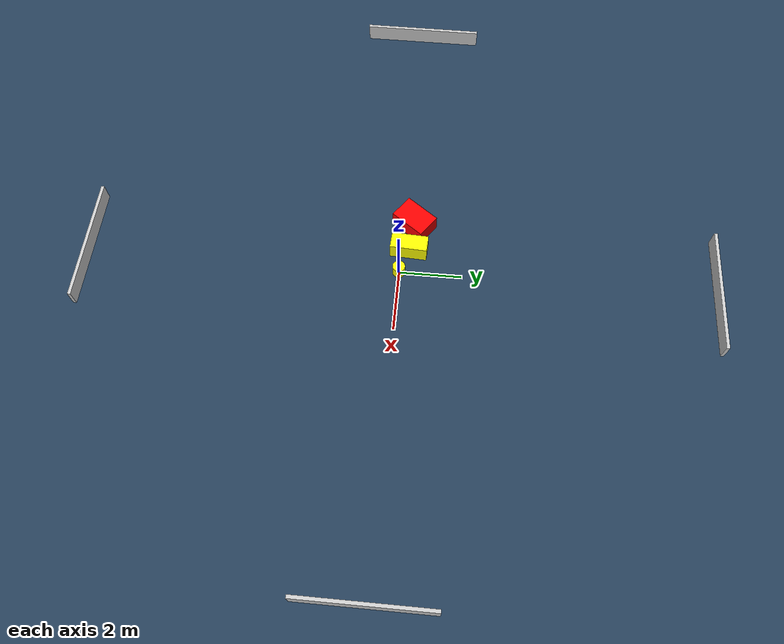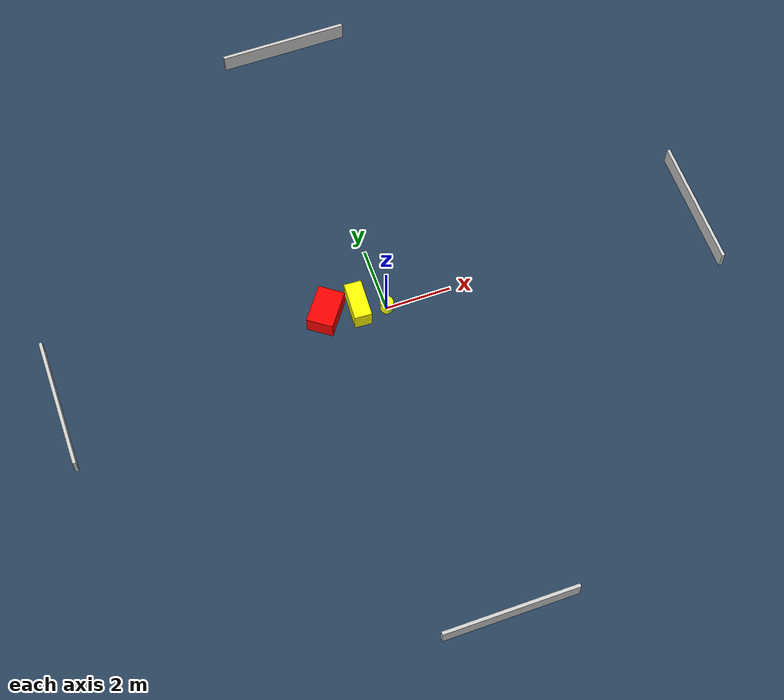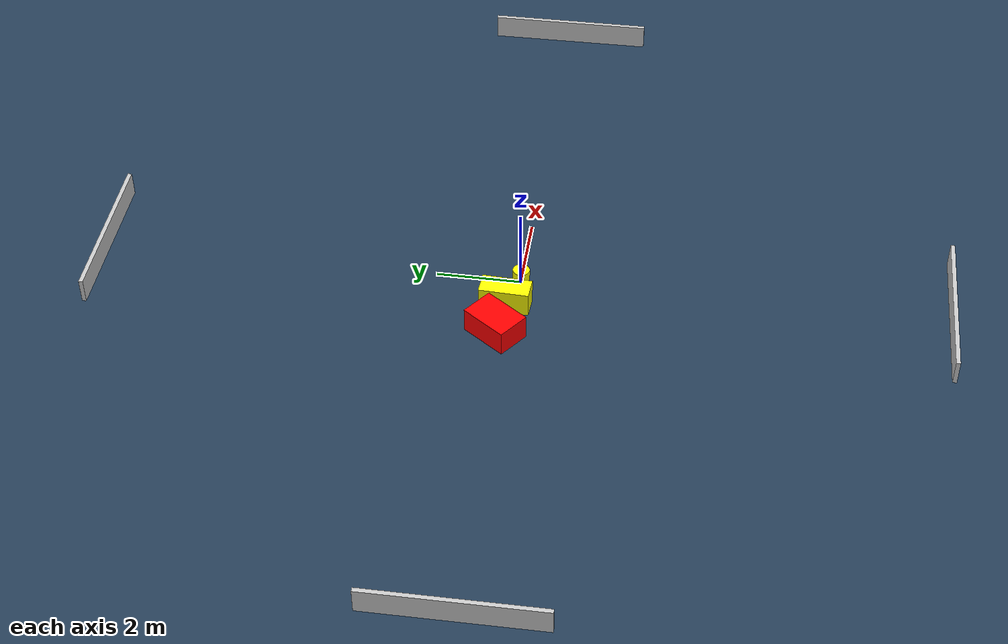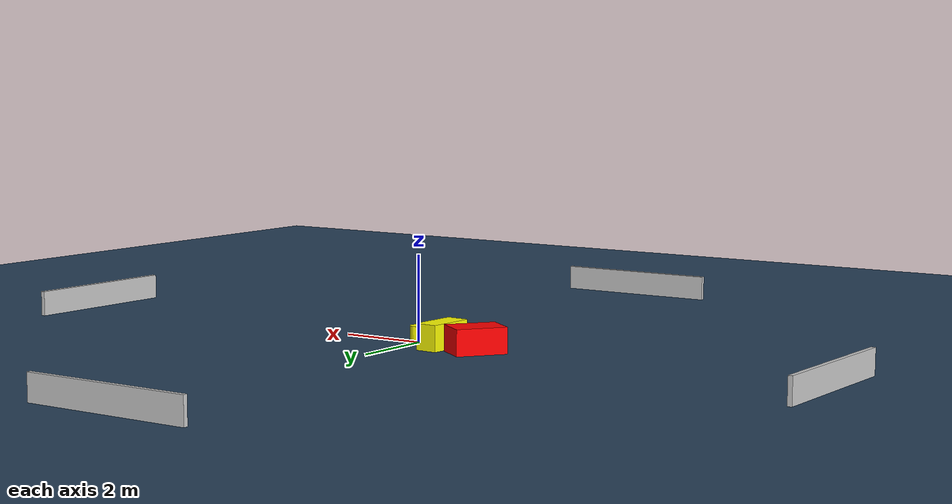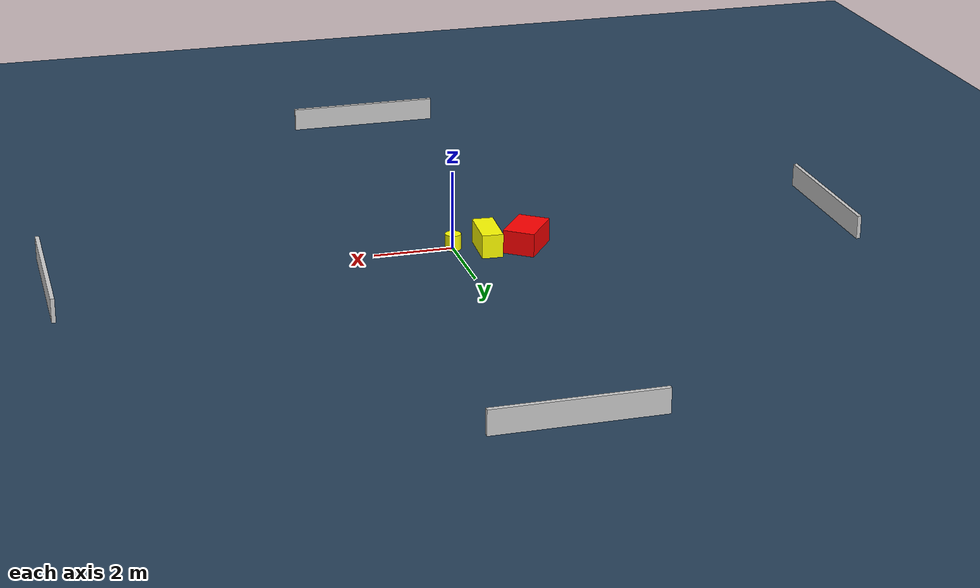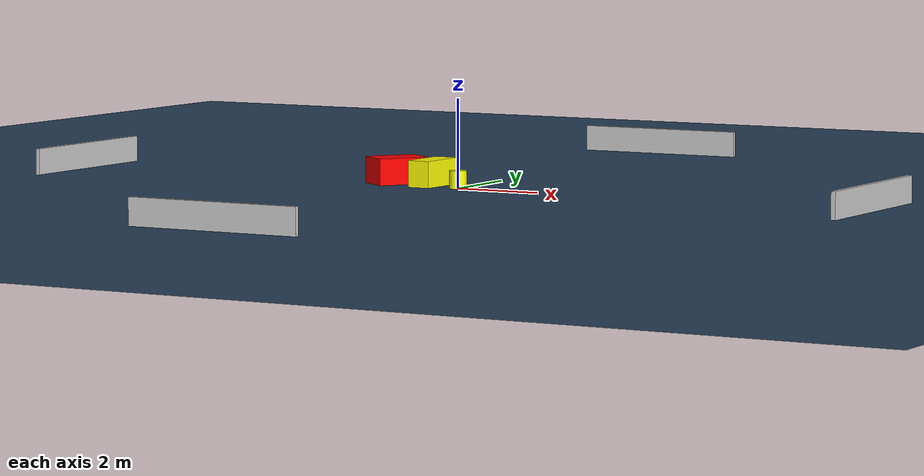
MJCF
<?xml version="1.0" ?>
<mujoco model="generated_environment">
  <option timestep="0.01" integrator="RK4" cone="elliptic"/>
  <default>
    <geom density="1"/>
  </default>
  <asset>
    <texture builtin="gradient" height="3072" name="skybox" rgb1="0.3 0.5 0.7" rgb2="0 0 0" type="skybox" width="512"/>
    <texture builtin="checker" height="300" name="groundplane" rgb1="0.2 0.3 0.4" rgb2="0.1 0.2 0.3" type="2d" width="300"/>
    <material name="groundplane" reflectance="0.2" texrepeat="5 5" texture="groundplane"/>
  </asset>
  <worldbody>
    <light dir="0 0 -1" directional="true" pos="0 0 1.5"/>
    <geom condim="3" friction="0.5 0.005 0.001" material="groundplane" name="floor" pos="0 0 0" size="0 0 0.05" type="plane"/>
    <body name="walls">
      <geom name="wall_1" condim="4" pos="-10.0 0.0 0.3" rgba="0.800000011920929 0.800000011920929 0.800000011920929 1.0" size="0.05 2.0 0.3" type="box"/>
      <geom name="wall_2" condim="4" pos="10.0 0.0 0.3" rgba="0.800000011920929 0.800000011920929 0.800000011920929 1.0" size="0.05 2.0 0.3" type="box"/>
      <geom name="wall_3" condim="4" pos="0.0 -10.0 0.3" rgba="0.800000011920929 0.800000011920929 0.800000011920929 1.0" size="2.0 0.05 0.3" type="box"/>
      <geom name="wall_4" condim="4" pos="0.0 10.0 0.3" rgba="0.800000011920929 0.800000011920929 0.800000011920929 1.0" size="2.0 0.05 0.3" type="box"/>
    </body>
    <body name="robot">
      <joint name="joint_x" type="slide" pos="0 0 0" axis="1 0 0"/>
      <joint name="joint_y" type="slide" pos="0 0 0" axis="0 1 0"/>
      <geom name="robot" type="cylinder" pos="0.0 0.0 0.2" size="0.2 0.2 0.0" mass="5.0" friction="1.0 0.005 0.0001" condim="4" rgba="1.0 1.0 0.0 1.0"/>
    </body>
    <body name="obstacle_1_movable">
      <geom name="obstacle_1_movable" condim="4" pos="-0.8129289967568605 0.2600825641922261 0.3" euler="0 0 357.00162082812227" friction="0.0 0.005 0.001" rgba="1.0 1.0 0.0 1.0" size="0.26592209549850787 0.5862179647853243 0.3" type="box" mass="0.1"/>
      <joint type="free"/>
    </body>
    <body name="obstacle_2_static">
      <geom name="obstacle_2_static" condim="4" pos="-1.7872701251764103 0.3591968142895586 0.3" euler="0 0 233.81600697545622" friction="0.0 0.005 0.001" rgba="1.0 0.0 0.0 1.0" size="0.5915832824901304 0.4037319471647204 0.3" type="box"/>
    </body>
  </worldbody>
  <actuator>
    <motor name="actuator_x" joint="joint_x" gear="1" ctrlrange="-1 1"/>
    <motor name="actuator_y" joint="joint_y" gear="1" ctrlrange="-1 1"/>
  </actuator>
</mujoco>
